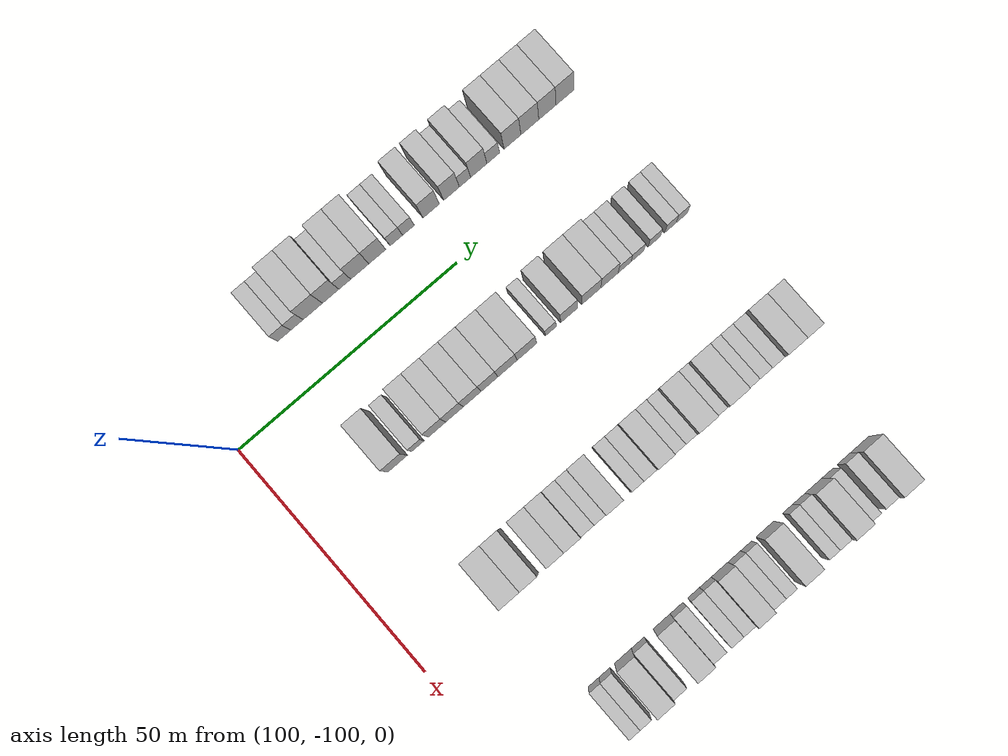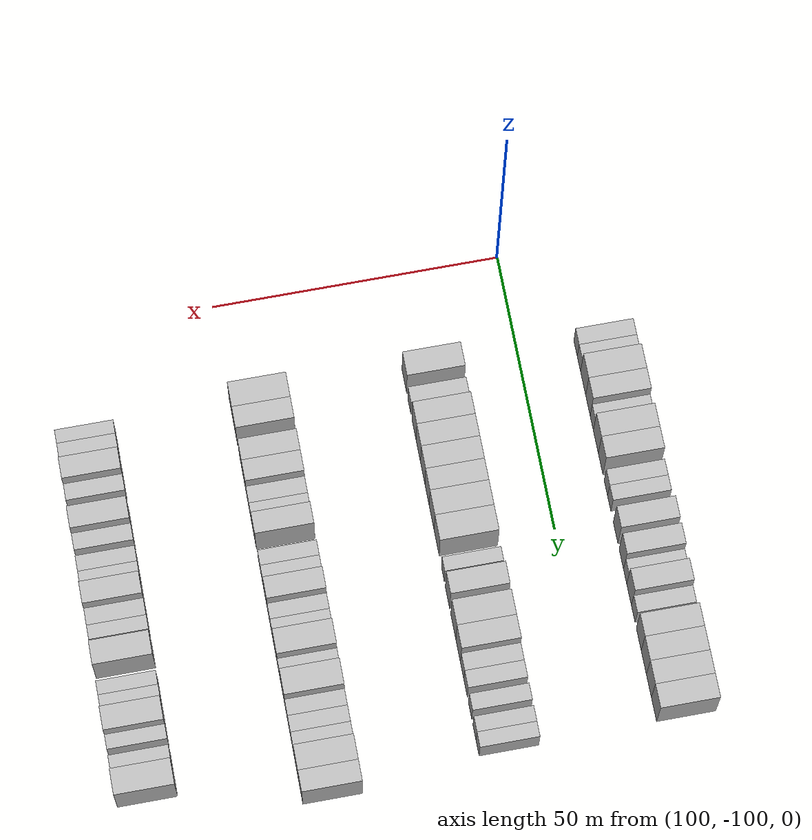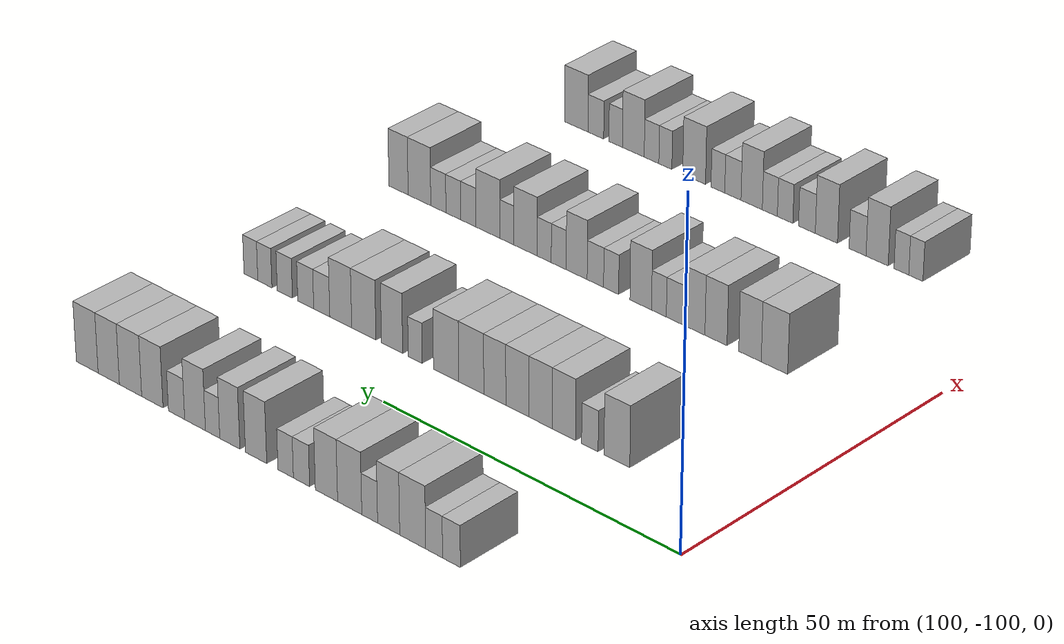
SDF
<sdf version="1.6">
 <world name="default">
  <model name="building_545">
   <static>1</static>
   <pose>85.0000 -81.1239 0 0.000000 0.000000 0.000000</pose>
   <link name="link">
    <pose>0 0 3.00 0 0 0</pose>
    <collision name="collision"><geometry><box><size>10.0000 2.9603 6.0000</size></box></geometry></collision>
    <visual name="visual">
     <cast_shadows>0</cast_shadows>
     <geometry><box><size>10.0000 2.9603 6.0000</size></box></geometry>
     <material>
      <script>
       <uri>model://HANNAS_wall/materials/scripts</uri>
       <uri>model://HANNAS_wall/materials/textures</uri>
       <name>vrc/HANNAS_wall</name>
      </script>
     </material>
    </visual>
   </link>
  </model>
  <model name="building_546">
   <static>1</static>
   <pose>85.0000 -78.2343 0 0.000000 0.000000 0.000000</pose>
   <link name="link">
    <pose>0 0 3.00 0 0 0</pose>
    <collision name="collision"><geometry><box><size>10.0000 2.8188 6.0000</size></box></geometry></collision>
    <visual name="visual">
     <cast_shadows>0</cast_shadows>
     <geometry><box><size>10.0000 2.8188 6.0000</size></box></geometry>
     <material>
      <script>
       <uri>model://HANNAS_wall/materials/scripts</uri>
       <uri>model://HANNAS_wall/materials/textures</uri>
       <name>vrc/HANNAS_wall</name>
      </script>
     </material>
    </visual>
   </link>
  </model>
  <model name="building_547">
   <static>1</static>
   <pose>85.0000 -74.6343 0 0.000000 0.000000 0.000000</pose>
   <link name="link">
    <pose>0 0 4.50 0 0 0</pose>
    <collision name="collision"><geometry><box><size>10.0000 4.3813 9.0000</size></box></geometry></collision>
    <visual name="visual">
     <cast_shadows>0</cast_shadows>
     <geometry><box><size>10.0000 4.3813 9.0000</size></box></geometry>
     <material>
      <script>
       <uri>model://HANNAS_wall/materials/scripts</uri>
       <uri>model://HANNAS_wall/materials/textures</uri>
       <name>vrc/HANNAS_wall</name>
      </script>
     </material>
    </visual>
   </link>
  </model>
  <model name="building_548">
   <static>1</static>
   <pose>85.0000 -70.5662 0 0.000000 0.000000 0.000000</pose>
   <link name="link">
    <pose>0 0 4.50 0 0 0</pose>
    <collision name="collision"><geometry><box><size>10.0000 3.7550 9.0000</size></box></geometry></collision>
    <visual name="visual">
     <cast_shadows>0</cast_shadows>
     <geometry><box><size>10.0000 3.7550 9.0000</size></box></geometry>
     <material>
      <script>
       <uri>model://HANNAS_wall/materials/scripts</uri>
       <uri>model://HANNAS_wall/materials/textures</uri>
       <name>vrc/HANNAS_wall</name>
      </script>
     </material>
    </visual>
   </link>
  </model>
  <model name="building_549">
   <static>1</static>
   <pose>85.0000 -67.3373 0 0.000000 0.000000 0.000000</pose>
   <link name="link">
    <pose>0 0 3.00 0 0 0</pose>
    <collision name="collision"><geometry><box><size>10.0000 2.7028 6.0000</size></box></geometry></collision>
    <visual name="visual">
     <cast_shadows>0</cast_shadows>
     <geometry><box><size>10.0000 2.7028 6.0000</size></box></geometry>
     <material>
      <script>
       <uri>model://HANNAS_wall/materials/scripts</uri>
       <uri>model://HANNAS_wall/materials/textures</uri>
       <name>vrc/HANNAS_wall</name>
      </script>
     </material>
    </visual>
   </link>
  </model>
  <model name="building_550">
   <static>1</static>
   <pose>85.0000 -63.8977 0 0.000000 0.000000 0.000000</pose>
   <link name="link">
    <pose>0 0 4.50 0 0 0</pose>
    <collision name="collision"><geometry><box><size>10.0000 4.1762 9.0000</size></box></geometry></collision>
    <visual name="visual">
     <cast_shadows>0</cast_shadows>
     <geometry><box><size>10.0000 4.1762 9.0000</size></box></geometry>
     <material>
      <script>
       <uri>model://HANNAS_wall/materials/scripts</uri>
       <uri>model://HANNAS_wall/materials/textures</uri>
       <name>vrc/HANNAS_wall</name>
      </script>
     </material>
    </visual>
   </link>
  </model>
  <model name="building_551">
   <static>1</static>
   <pose>85.0000 -59.8711 0 0.000000 0.000000 0.000000</pose>
   <link name="link">
    <pose>0 0 4.50 0 0 0</pose>
    <collision name="collision"><geometry><box><size>10.0000 3.8771 9.0000</size></box></geometry></collision>
    <visual name="visual">
     <cast_shadows>0</cast_shadows>
     <geometry><box><size>10.0000 3.8771 9.0000</size></box></geometry>
     <material>
      <script>
       <uri>model://HANNAS_wall/materials/scripts</uri>
       <uri>model://HANNAS_wall/materials/textures</uri>
       <name>vrc/HANNAS_wall</name>
      </script>
     </material>
    </visual>
   </link>
  </model>
  <model name="building_552">
   <static>1</static>
   <pose>85.0000 -55.5048 0 0.000000 0.000000 0.000000</pose>
   <link name="link">
    <pose>0 0 3.00 0 0 0</pose>
    <collision name="collision"><geometry><box><size>10.0000 2.8554 6.0000</size></box></geometry></collision>
    <visual name="visual">
     <cast_shadows>0</cast_shadows>
     <geometry><box><size>10.0000 2.8554 6.0000</size></box></geometry>
     <material>
      <script>
       <uri>model://HANNAS_wall/materials/scripts</uri>
       <uri>model://HANNAS_wall/materials/textures</uri>
       <name>vrc/HANNAS_wall</name>
      </script>
     </material>
    </visual>
   </link>
  </model>
  <model name="building_553">
   <static>1</static>
   <pose>85.0000 -52.7178 0 0.000000 0.000000 0.000000</pose>
   <link name="link">
    <pose>0 0 3.00 0 0 0</pose>
    <collision name="collision"><geometry><box><size>10.0000 2.7187 6.0000</size></box></geometry></collision>
    <visual name="visual">
     <cast_shadows>0</cast_shadows>
     <geometry><box><size>10.0000 2.7187 6.0000</size></box></geometry>
     <material>
      <script>
       <uri>model://HANNAS_wall/materials/scripts</uri>
       <uri>model://HANNAS_wall/materials/textures</uri>
       <name>vrc/HANNAS_wall</name>
      </script>
     </material>
    </visual>
   </link>
  </model>
  <model name="building_554">
   <static>1</static>
   <pose>85.0000 -47.4528 0 0.000000 0.000000 0.000000</pose>
   <link name="link">
    <pose>0 0 4.50 0 0 0</pose>
    <collision name="collision"><geometry><box><size>10.0000 3.8113 9.0000</size></box></geometry></collision>
    <visual name="visual">
     <cast_shadows>0</cast_shadows>
     <geometry><box><size>10.0000 3.8113 9.0000</size></box></geometry>
     <material>
      <script>
       <uri>model://HANNAS_wall/materials/scripts</uri>
       <uri>model://HANNAS_wall/materials/textures</uri>
       <name>vrc/HANNAS_wall</name>
      </script>
     </material>
    </visual>
   </link>
  </model>
  <model name="building_555">
   <static>1</static>
   <pose>85.0000 -42.7305 0 0.000000 0.000000 0.000000</pose>
   <link name="link">
    <pose>0 0 4.50 0 0 0</pose>
    <collision name="collision"><geometry><box><size>10.0000 3.6332 9.0000</size></box></geometry></collision>
    <visual name="visual">
     <cast_shadows>0</cast_shadows>
     <geometry><box><size>10.0000 3.6332 9.0000</size></box></geometry>
     <material>
      <script>
       <uri>model://HANNAS_wall/materials/scripts</uri>
       <uri>model://HANNAS_wall/materials/textures</uri>
       <name>vrc/HANNAS_wall</name>
      </script>
     </material>
    </visual>
   </link>
  </model>
  <model name="building_556">
   <static>1</static>
   <pose>85.0000 -39.6131 0 0.000000 0.000000 0.000000</pose>
   <link name="link">
    <pose>0 0 3.00 0 0 0</pose>
    <collision name="collision"><geometry><box><size>10.0000 2.6017 6.0000</size></box></geometry></collision>
    <visual name="visual">
     <cast_shadows>0</cast_shadows>
     <geometry><box><size>10.0000 2.6017 6.0000</size></box></geometry>
     <material>
      <script>
       <uri>model://HANNAS_wall/materials/scripts</uri>
       <uri>model://HANNAS_wall/materials/textures</uri>
       <name>vrc/HANNAS_wall</name>
      </script>
     </material>
    </visual>
   </link>
  </model>
  <model name="building_557">
   <static>1</static>
   <pose>85.0000 -36.4079 0 0.000000 0.000000 0.000000</pose>
   <link name="link">
    <pose>0 0 4.50 0 0 0</pose>
    <collision name="collision"><geometry><box><size>10.0000 3.8086 9.0000</size></box></geometry></collision>
    <visual name="visual">
     <cast_shadows>0</cast_shadows>
     <geometry><box><size>10.0000 3.8086 9.0000</size></box></geometry>
     <material>
      <script>
       <uri>model://HANNAS_wall/materials/scripts</uri>
       <uri>model://HANNAS_wall/materials/textures</uri>
       <name>vrc/HANNAS_wall</name>
      </script>
     </material>
    </visual>
   </link>
  </model>
  <model name="building_558">
   <static>1</static>
   <pose>85.0000 -33.0100 0 0.000000 0.000000 0.000000</pose>
   <link name="link">
    <pose>0 0 3.00 0 0 0</pose>
    <collision name="collision"><geometry><box><size>10.0000 2.9872 6.0000</size></box></geometry></collision>
    <visual name="visual">
     <cast_shadows>0</cast_shadows>
     <geometry><box><size>10.0000 2.9872 6.0000</size></box></geometry>
     <material>
      <script>
       <uri>model://HANNAS_wall/materials/scripts</uri>
       <uri>model://HANNAS_wall/materials/textures</uri>
       <name>vrc/HANNAS_wall</name>
      </script>
     </material>
    </visual>
   </link>
  </model>
  <model name="building_559">
   <static>1</static>
   <pose>85.0000 -28.5304 0 0.000000 0.000000 0.000000</pose>
   <link name="link">
    <pose>0 0 4.50 0 0 0</pose>
    <collision name="collision"><geometry><box><size>10.0000 3.9720 9.0000</size></box></geometry></collision>
    <visual name="visual">
     <cast_shadows>0</cast_shadows>
     <geometry><box><size>10.0000 3.9720 9.0000</size></box></geometry>
     <material>
      <script>
       <uri>model://HANNAS_wall/materials/scripts</uri>
       <uri>model://HANNAS_wall/materials/textures</uri>
       <name>vrc/HANNAS_wall</name>
      </script>
     </material>
    </visual>
   </link>
  </model>
  <model name="building_560">
   <static>1</static>
   <pose>85.0000 -24.4537 0 0.000000 0.000000 0.000000</pose>
   <link name="link">
    <pose>0 0 4.50 0 0 0</pose>
    <collision name="collision"><geometry><box><size>10.0000 4.1814 9.0000</size></box></geometry></collision>
    <visual name="visual">
     <cast_shadows>0</cast_shadows>
     <geometry><box><size>10.0000 4.1814 9.0000</size></box></geometry>
     <material>
      <script>
       <uri>model://HANNAS_wall/materials/scripts</uri>
       <uri>model://HANNAS_wall/materials/textures</uri>
       <name>vrc/HANNAS_wall</name>
      </script>
     </material>
    </visual>
   </link>
  </model>
  <model name="building_561">
   <static>1</static>
   <pose>85.0000 -20.3516 0 0.000000 0.000000 0.000000</pose>
   <link name="link">
    <pose>0 0 4.50 0 0 0</pose>
    <collision name="collision"><geometry><box><size>10.0000 4.0229 9.0000</size></box></geometry></collision>
    <visual name="visual">
     <cast_shadows>0</cast_shadows>
     <geometry><box><size>10.0000 4.0229 9.0000</size></box></geometry>
     <material>
      <script>
       <uri>model://HANNAS_wall/materials/scripts</uri>
       <uri>model://HANNAS_wall/materials/textures</uri>
       <name>vrc/HANNAS_wall</name>
      </script>
     </material>
    </visual>
   </link>
  </model>
  <model name="building_562">
   <static>1</static>
   <pose>85.0000 -16.2618 0 0.000000 0.000000 0.000000</pose>
   <link name="link">
    <pose>0 0 4.50 0 0 0</pose>
    <collision name="collision"><geometry><box><size>10.0000 4.1566 9.0000</size></box></geometry></collision>
    <visual name="visual">
     <cast_shadows>0</cast_shadows>
     <geometry><box><size>10.0000 4.1566 9.0000</size></box></geometry>
     <material>
      <script>
       <uri>model://HANNAS_wall/materials/scripts</uri>
       <uri>model://HANNAS_wall/materials/textures</uri>
       <name>vrc/HANNAS_wall</name>
      </script>
     </material>
    </visual>
   </link>
  </model>
  <model name="building_778">
   <static>1</static>
   <pose>115.0000 -80.5696 0 0.000000 0.000000 0.000000</pose>
   <link name="link">
    <pose>0 0 4.50 0 0 0</pose>
    <collision name="collision"><geometry><box><size>10.0000 4.2958 9.0000</size></box></geometry></collision>
    <visual name="visual">
     <cast_shadows>0</cast_shadows>
     <geometry><box><size>10.0000 4.2958 9.0000</size></box></geometry>
     <material>
      <script>
       <uri>model://HANNAS_wall/materials/scripts</uri>
       <uri>model://HANNAS_wall/materials/textures</uri>
       <name>vrc/HANNAS_wall</name>
      </script>
     </material>
    </visual>
   </link>
  </model>
  <model name="building_779">
   <static>1</static>
   <pose>115.0000 -76.0276 0 0.000000 0.000000 0.000000</pose>
   <link name="link">
    <pose>0 0 3.00 0 0 0</pose>
    <collision name="collision"><geometry><box><size>10.0000 2.7881 6.0000</size></box></geometry></collision>
    <visual name="visual">
     <cast_shadows>0</cast_shadows>
     <geometry><box><size>10.0000 2.7881 6.0000</size></box></geometry>
     <material>
      <script>
       <uri>model://HANNAS_wall/materials/scripts</uri>
       <uri>model://HANNAS_wall/materials/textures</uri>
       <name>vrc/HANNAS_wall</name>
      </script>
     </material>
    </visual>
   </link>
  </model>
  <model name="building_780">
   <static>1</static>
   <pose>115.0000 -71.6526 0 0.000000 0.000000 0.000000</pose>
   <link name="link">
    <pose>0 0 4.50 0 0 0</pose>
    <collision name="collision"><geometry><box><size>10.0000 3.9619 9.0000</size></box></geometry></collision>
    <visual name="visual">
     <cast_shadows>0</cast_shadows>
     <geometry><box><size>10.0000 3.9619 9.0000</size></box></geometry>
     <material>
      <script>
       <uri>model://HANNAS_wall/materials/scripts</uri>
       <uri>model://HANNAS_wall/materials/textures</uri>
       <name>vrc/HANNAS_wall</name>
      </script>
     </material>
    </visual>
   </link>
  </model>
  <model name="building_781">
   <static>1</static>
   <pose>115.0000 -67.6798 0 0.000000 0.000000 0.000000</pose>
   <link name="link">
    <pose>0 0 4.50 0 0 0</pose>
    <collision name="collision"><geometry><box><size>10.0000 3.9837 9.0000</size></box></geometry></collision>
    <visual name="visual">
     <cast_shadows>0</cast_shadows>
     <geometry><box><size>10.0000 3.9837 9.0000</size></box></geometry>
     <material>
      <script>
       <uri>model://HANNAS_wall/materials/scripts</uri>
       <uri>model://HANNAS_wall/materials/textures</uri>
       <name>vrc/HANNAS_wall</name>
      </script>
     </material>
    </visual>
   </link>
  </model>
  <model name="building_782">
   <static>1</static>
   <pose>115.0000 -63.6665 0 0.000000 0.000000 0.000000</pose>
   <link name="link">
    <pose>0 0 4.50 0 0 0</pose>
    <collision name="collision"><geometry><box><size>10.0000 4.0430 9.0000</size></box></geometry></collision>
    <visual name="visual">
     <cast_shadows>0</cast_shadows>
     <geometry><box><size>10.0000 4.0430 9.0000</size></box></geometry>
     <material>
      <script>
       <uri>model://HANNAS_wall/materials/scripts</uri>
       <uri>model://HANNAS_wall/materials/textures</uri>
       <name>vrc/HANNAS_wall</name>
      </script>
     </material>
    </visual>
   </link>
  </model>
  <model name="building_783">
   <static>1</static>
   <pose>115.0000 -59.7232 0 0.000000 0.000000 0.000000</pose>
   <link name="link">
    <pose>0 0 4.50 0 0 0</pose>
    <collision name="collision"><geometry><box><size>10.0000 3.8436 9.0000</size></box></geometry></collision>
    <visual name="visual">
     <cast_shadows>0</cast_shadows>
     <geometry><box><size>10.0000 3.8436 9.0000</size></box></geometry>
     <material>
      <script>
       <uri>model://HANNAS_wall/materials/scripts</uri>
       <uri>model://HANNAS_wall/materials/textures</uri>
       <name>vrc/HANNAS_wall</name>
      </script>
     </material>
    </visual>
   </link>
  </model>
  <model name="building_784">
   <static>1</static>
   <pose>115.0000 -55.5906 0 0.000000 0.000000 0.000000</pose>
   <link name="link">
    <pose>0 0 4.50 0 0 0</pose>
    <collision name="collision"><geometry><box><size>10.0000 4.4215 9.0000</size></box></geometry></collision>
    <visual name="visual">
     <cast_shadows>0</cast_shadows>
     <geometry><box><size>10.0000 4.4215 9.0000</size></box></geometry>
     <material>
      <script>
       <uri>model://HANNAS_wall/materials/scripts</uri>
       <uri>model://HANNAS_wall/materials/textures</uri>
       <name>vrc/HANNAS_wall</name>
      </script>
     </material>
    </visual>
   </link>
  </model>
  <model name="building_785">
   <static>1</static>
   <pose>115.0000 -51.1321 0 0.000000 0.000000 0.000000</pose>
   <link name="link">
    <pose>0 0 4.50 0 0 0</pose>
    <collision name="collision"><geometry><box><size>10.0000 4.4955 9.0000</size></box></geometry></collision>
    <visual name="visual">
     <cast_shadows>0</cast_shadows>
     <geometry><box><size>10.0000 4.4955 9.0000</size></box></geometry>
     <material>
      <script>
       <uri>model://HANNAS_wall/materials/scripts</uri>
       <uri>model://HANNAS_wall/materials/textures</uri>
       <name>vrc/HANNAS_wall</name>
      </script>
     </material>
    </visual>
   </link>
  </model>
  <model name="building_786">
   <static>1</static>
   <pose>115.0000 -45.6271 0 0.000000 0.000000 0.000000</pose>
   <link name="link">
    <pose>0 0 3.00 0 0 0</pose>
    <collision name="collision"><geometry><box><size>10.0000 2.5143 6.0000</size></box></geometry></collision>
    <visual name="visual">
     <cast_shadows>0</cast_shadows>
     <geometry><box><size>10.0000 2.5143 6.0000</size></box></geometry>
     <material>
      <script>
       <uri>model://HANNAS_wall/materials/scripts</uri>
       <uri>model://HANNAS_wall/materials/textures</uri>
       <name>vrc/HANNAS_wall</name>
      </script>
     </material>
    </visual>
   </link>
  </model>
  <model name="building_787">
   <static>1</static>
   <pose>115.0000 -41.4441 0 0.000000 0.000000 0.000000</pose>
   <link name="link">
    <pose>0 0 4.50 0 0 0</pose>
    <collision name="collision"><geometry><box><size>10.0000 3.8518 9.0000</size></box></geometry></collision>
    <visual name="visual">
     <cast_shadows>0</cast_shadows>
     <geometry><box><size>10.0000 3.8518 9.0000</size></box></geometry>
     <material>
      <script>
       <uri>model://HANNAS_wall/materials/scripts</uri>
       <uri>model://HANNAS_wall/materials/textures</uri>
       <name>vrc/HANNAS_wall</name>
      </script>
     </material>
    </visual>
   </link>
  </model>
  <model name="building_788">
   <static>1</static>
   <pose>115.0000 -36.2957 0 0.000000 0.000000 0.000000</pose>
   <link name="link">
    <pose>0 0 4.50 0 0 0</pose>
    <collision name="collision"><geometry><box><size>10.0000 4.4450 9.0000</size></box></geometry></collision>
    <visual name="visual">
     <cast_shadows>0</cast_shadows>
     <geometry><box><size>10.0000 4.4450 9.0000</size></box></geometry>
     <material>
      <script>
       <uri>model://HANNAS_wall/materials/scripts</uri>
       <uri>model://HANNAS_wall/materials/textures</uri>
       <name>vrc/HANNAS_wall</name>
      </script>
     </material>
    </visual>
   </link>
  </model>
  <model name="building_789">
   <static>1</static>
   <pose>115.0000 -32.0443 0 0.000000 0.000000 0.000000</pose>
   <link name="link">
    <pose>0 0 4.50 0 0 0</pose>
    <collision name="collision"><geometry><box><size>10.0000 4.0579 9.0000</size></box></geometry></collision>
    <visual name="visual">
     <cast_shadows>0</cast_shadows>
     <geometry><box><size>10.0000 4.0579 9.0000</size></box></geometry>
     <material>
      <script>
       <uri>model://HANNAS_wall/materials/scripts</uri>
       <uri>model://HANNAS_wall/materials/textures</uri>
       <name>vrc/HANNAS_wall</name>
      </script>
     </material>
    </visual>
   </link>
  </model>
  <model name="building_790">
   <static>1</static>
   <pose>115.0000 -28.5166 0 0.000000 0.000000 0.000000</pose>
   <link name="link">
    <pose>0 0 3.00 0 0 0</pose>
    <collision name="collision"><geometry><box><size>10.0000 2.9974 6.0000</size></box></geometry></collision>
    <visual name="visual">
     <cast_shadows>0</cast_shadows>
     <geometry><box><size>10.0000 2.9974 6.0000</size></box></geometry>
     <material>
      <script>
       <uri>model://HANNAS_wall/materials/scripts</uri>
       <uri>model://HANNAS_wall/materials/textures</uri>
       <name>vrc/HANNAS_wall</name>
      </script>
     </material>
    </visual>
   </link>
  </model>
  <model name="building_791">
   <static>1</static>
   <pose>115.0000 -25.5226 0 0.000000 0.000000 0.000000</pose>
   <link name="link">
    <pose>0 0 3.00 0 0 0</pose>
    <collision name="collision"><geometry><box><size>10.0000 2.9906 6.0000</size></box></geometry></collision>
    <visual name="visual">
     <cast_shadows>0</cast_shadows>
     <geometry><box><size>10.0000 2.9906 6.0000</size></box></geometry>
     <material>
      <script>
       <uri>model://HANNAS_wall/materials/scripts</uri>
       <uri>model://HANNAS_wall/materials/textures</uri>
       <name>vrc/HANNAS_wall</name>
      </script>
     </material>
    </visual>
   </link>
  </model>
  <model name="building_792">
   <static>1</static>
   <pose>115.0000 -21.5911 0 0.000000 0.000000 0.000000</pose>
   <link name="link">
    <pose>0 0 3.00 0 0 0</pose>
    <collision name="collision"><geometry><box><size>10.0000 2.8725 6.0000</size></box></geometry></collision>
    <visual name="visual">
     <cast_shadows>0</cast_shadows>
     <geometry><box><size>10.0000 2.8725 6.0000</size></box></geometry>
     <material>
      <script>
       <uri>model://HANNAS_wall/materials/scripts</uri>
       <uri>model://HANNAS_wall/materials/textures</uri>
       <name>vrc/HANNAS_wall</name>
      </script>
     </material>
    </visual>
   </link>
  </model>
  <model name="building_793">
   <static>1</static>
   <pose>115.0000 -17.8082 0 0.000000 0.000000 0.000000</pose>
   <link name="link">
    <pose>0 0 3.00 0 0 0</pose>
    <collision name="collision"><geometry><box><size>10.0000 2.6932 6.0000</size></box></geometry></collision>
    <visual name="visual">
     <cast_shadows>0</cast_shadows>
     <geometry><box><size>10.0000 2.6932 6.0000</size></box></geometry>
     <material>
      <script>
       <uri>model://HANNAS_wall/materials/scripts</uri>
       <uri>model://HANNAS_wall/materials/textures</uri>
       <name>vrc/HANNAS_wall</name>
      </script>
     </material>
    </visual>
   </link>
  </model>
  <model name="building_794">
   <static>1</static>
   <pose>115.0000 -15.1454 0 0.000000 0.000000 0.000000</pose>
   <link name="link">
    <pose>0 0 3.00 0 0 0</pose>
    <collision name="collision"><geometry><box><size>10.0000 2.6323 6.0000</size></box></geometry></collision>
    <visual name="visual">
     <cast_shadows>0</cast_shadows>
     <geometry><box><size>10.0000 2.6323 6.0000</size></box></geometry>
     <material>
      <script>
       <uri>model://HANNAS_wall/materials/scripts</uri>
       <uri>model://HANNAS_wall/materials/textures</uri>
       <name>vrc/HANNAS_wall</name>
      </script>
     </material>
    </visual>
   </link>
  </model>
  <model name="building_1009">
   <static>1</static>
   <pose>145.0000 -80.5540 0 0.000000 0.000000 0.000000</pose>
   <link name="link">
    <pose>0 0 4.50 0 0 0</pose>
    <collision name="collision"><geometry><box><size>10.0000 4.4413 9.0000</size></box></geometry></collision>
    <visual name="visual">
     <cast_shadows>0</cast_shadows>
     <geometry><box><size>10.0000 4.4413 9.0000</size></box></geometry>
     <material>
      <script>
       <uri>model://HANNAS_wall/materials/scripts</uri>
       <uri>model://HANNAS_wall/materials/textures</uri>
       <name>vrc/HANNAS_wall</name>
      </script>
     </material>
    </visual>
   </link>
  </model>
  <model name="building_1010">
   <static>1</static>
   <pose>145.0000 -76.4279 0 0.000000 0.000000 0.000000</pose>
   <link name="link">
    <pose>0 0 4.50 0 0 0</pose>
    <collision name="collision"><geometry><box><size>10.0000 3.8109 9.0000</size></box></geometry></collision>
    <visual name="visual">
     <cast_shadows>0</cast_shadows>
     <geometry><box><size>10.0000 3.8109 9.0000</size></box></geometry>
     <material>
      <script>
       <uri>model://HANNAS_wall/materials/scripts</uri>
       <uri>model://HANNAS_wall/materials/textures</uri>
       <name>vrc/HANNAS_wall</name>
      </script>
     </material>
    </visual>
   </link>
  </model>
  <model name="building_1011">
   <static>1</static>
   <pose>145.0000 -70.6289 0 0.000000 0.000000 0.000000</pose>
   <link name="link">
    <pose>0 0 4.50 0 0 0</pose>
    <collision name="collision"><geometry><box><size>10.0000 3.7870 9.0000</size></box></geometry></collision>
    <visual name="visual">
     <cast_shadows>0</cast_shadows>
     <geometry><box><size>10.0000 3.7870 9.0000</size></box></geometry>
     <material>
      <script>
       <uri>model://HANNAS_wall/materials/scripts</uri>
       <uri>model://HANNAS_wall/materials/textures</uri>
       <name>vrc/HANNAS_wall</name>
      </script>
     </material>
    </visual>
   </link>
  </model>
  <model name="building_1012">
   <static>1</static>
   <pose>145.0000 -66.8709 0 0.000000 0.000000 0.000000</pose>
   <link name="link">
    <pose>0 0 4.50 0 0 0</pose>
    <collision name="collision"><geometry><box><size>10.0000 3.7292 9.0000</size></box></geometry></collision>
    <visual name="visual">
     <cast_shadows>0</cast_shadows>
     <geometry><box><size>10.0000 3.7292 9.0000</size></box></geometry>
     <material>
      <script>
       <uri>model://HANNAS_wall/materials/scripts</uri>
       <uri>model://HANNAS_wall/materials/textures</uri>
       <name>vrc/HANNAS_wall</name>
      </script>
     </material>
    </visual>
   </link>
  </model>
  <model name="building_1013">
   <static>1</static>
   <pose>145.0000 -63.5257 0 0.000000 0.000000 0.000000</pose>
   <link name="link">
    <pose>0 0 3.00 0 0 0</pose>
    <collision name="collision"><geometry><box><size>10.0000 2.9611 6.0000</size></box></geometry></collision>
    <visual name="visual">
     <cast_shadows>0</cast_shadows>
     <geometry><box><size>10.0000 2.9611 6.0000</size></box></geometry>
     <material>
      <script>
       <uri>model://HANNAS_wall/materials/scripts</uri>
       <uri>model://HANNAS_wall/materials/textures</uri>
       <name>vrc/HANNAS_wall</name>
      </script>
     </material>
    </visual>
   </link>
  </model>
  <model name="building_1014">
   <static>1</static>
   <pose>145.0000 -60.7494 0 0.000000 0.000000 0.000000</pose>
   <link name="link">
    <pose>0 0 3.00 0 0 0</pose>
    <collision name="collision"><geometry><box><size>10.0000 2.5915 6.0000</size></box></geometry></collision>
    <visual name="visual">
     <cast_shadows>0</cast_shadows>
     <geometry><box><size>10.0000 2.5915 6.0000</size></box></geometry>
     <material>
      <script>
       <uri>model://HANNAS_wall/materials/scripts</uri>
       <uri>model://HANNAS_wall/materials/textures</uri>
       <name>vrc/HANNAS_wall</name>
      </script>
     </material>
    </visual>
   </link>
  </model>
  <model name="building_1015">
   <static>1</static>
   <pose>145.0000 -57.5539 0 0.000000 0.000000 0.000000</pose>
   <link name="link">
    <pose>0 0 4.50 0 0 0</pose>
    <collision name="collision"><geometry><box><size>10.0000 3.7995 9.0000</size></box></geometry></collision>
    <visual name="visual">
     <cast_shadows>0</cast_shadows>
     <geometry><box><size>10.0000 3.7995 9.0000</size></box></geometry>
     <material>
      <script>
       <uri>model://HANNAS_wall/materials/scripts</uri>
       <uri>model://HANNAS_wall/materials/textures</uri>
       <name>vrc/HANNAS_wall</name>
      </script>
     </material>
    </visual>
   </link>
  </model>
  <model name="building_1016">
   <static>1</static>
   <pose>145.0000 -52.3153 0 0.000000 0.000000 0.000000</pose>
   <link name="link">
    <pose>0 0 3.00 0 0 0</pose>
    <collision name="collision"><geometry><box><size>10.0000 2.6776 6.0000</size></box></geometry></collision>
    <visual name="visual">
     <cast_shadows>0</cast_shadows>
     <geometry><box><size>10.0000 2.6776 6.0000</size></box></geometry>
     <material>
      <script>
       <uri>model://HANNAS_wall/materials/scripts</uri>
       <uri>model://HANNAS_wall/materials/textures</uri>
       <name>vrc/HANNAS_wall</name>
      </script>
     </material>
    </visual>
   </link>
  </model>
  <model name="building_1017">
   <static>1</static>
   <pose>145.0000 -49.5030 0 0.000000 0.000000 0.000000</pose>
   <link name="link">
    <pose>0 0 3.00 0 0 0</pose>
    <collision name="collision"><geometry><box><size>10.0000 2.9470 6.0000</size></box></geometry></collision>
    <visual name="visual">
     <cast_shadows>0</cast_shadows>
     <geometry><box><size>10.0000 2.9470 6.0000</size></box></geometry>
     <material>
      <script>
       <uri>model://HANNAS_wall/materials/scripts</uri>
       <uri>model://HANNAS_wall/materials/textures</uri>
       <name>vrc/HANNAS_wall</name>
      </script>
     </material>
    </visual>
   </link>
  </model>
  <model name="building_1018">
   <static>1</static>
   <pose>145.0000 -46.1502 0 0.000000 0.000000 0.000000</pose>
   <link name="link">
    <pose>0 0 4.50 0 0 0</pose>
    <collision name="collision"><geometry><box><size>10.0000 3.7587 9.0000</size></box></geometry></collision>
    <visual name="visual">
     <cast_shadows>0</cast_shadows>
     <geometry><box><size>10.0000 3.7587 9.0000</size></box></geometry>
     <material>
      <script>
       <uri>model://HANNAS_wall/materials/scripts</uri>
       <uri>model://HANNAS_wall/materials/textures</uri>
       <name>vrc/HANNAS_wall</name>
      </script>
     </material>
    </visual>
   </link>
  </model>
  <model name="building_1019">
   <static>1</static>
   <pose>145.0000 -42.9078 0 0.000000 0.000000 0.000000</pose>
   <link name="link">
    <pose>0 0 3.00 0 0 0</pose>
    <collision name="collision"><geometry><box><size>10.0000 2.7262 6.0000</size></box></geometry></collision>
    <visual name="visual">
     <cast_shadows>0</cast_shadows>
     <geometry><box><size>10.0000 2.7262 6.0000</size></box></geometry>
     <material>
      <script>
       <uri>model://HANNAS_wall/materials/scripts</uri>
       <uri>model://HANNAS_wall/materials/textures</uri>
       <name>vrc/HANNAS_wall</name>
      </script>
     </material>
    </visual>
   </link>
  </model>
  <model name="building_1020">
   <static>1</static>
   <pose>145.0000 -40.2682 0 0.000000 0.000000 0.000000</pose>
   <link name="link">
    <pose>0 0 3.00 0 0 0</pose>
    <collision name="collision"><geometry><box><size>10.0000 2.5529 6.0000</size></box></geometry></collision>
    <visual name="visual">
     <cast_shadows>0</cast_shadows>
     <geometry><box><size>10.0000 2.5529 6.0000</size></box></geometry>
     <material>
      <script>
       <uri>model://HANNAS_wall/materials/scripts</uri>
       <uri>model://HANNAS_wall/materials/textures</uri>
       <name>vrc/HANNAS_wall</name>
      </script>
     </material>
    </visual>
   </link>
  </model>
  <model name="building_1021">
   <static>1</static>
   <pose>145.0000 -36.8274 0 0.000000 0.000000 0.000000</pose>
   <link name="link">
    <pose>0 0 4.50 0 0 0</pose>
    <collision name="collision"><geometry><box><size>10.0000 4.3288 9.0000</size></box></geometry></collision>
    <visual name="visual">
     <cast_shadows>0</cast_shadows>
     <geometry><box><size>10.0000 4.3288 9.0000</size></box></geometry>
     <material>
      <script>
       <uri>model://HANNAS_wall/materials/scripts</uri>
       <uri>model://HANNAS_wall/materials/textures</uri>
       <name>vrc/HANNAS_wall</name>
      </script>
     </material>
    </visual>
   </link>
  </model>
  <model name="building_1022">
   <static>1</static>
   <pose>145.0000 -33.3969 0 0.000000 0.000000 0.000000</pose>
   <link name="link">
    <pose>0 0 3.00 0 0 0</pose>
    <collision name="collision"><geometry><box><size>10.0000 2.5321 6.0000</size></box></geometry></collision>
    <visual name="visual">
     <cast_shadows>0</cast_shadows>
     <geometry><box><size>10.0000 2.5321 6.0000</size></box></geometry>
     <material>
      <script>
       <uri>model://HANNAS_wall/materials/scripts</uri>
       <uri>model://HANNAS_wall/materials/textures</uri>
       <name>vrc/HANNAS_wall</name>
      </script>
     </material>
    </visual>
   </link>
  </model>
  <model name="building_1023">
   <static>1</static>
   <pose>145.0000 -29.8843 0 0.000000 0.000000 0.000000</pose>
   <link name="link">
    <pose>0 0 4.50 0 0 0</pose>
    <collision name="collision"><geometry><box><size>10.0000 4.4931 9.0000</size></box></geometry></collision>
    <visual name="visual">
     <cast_shadows>0</cast_shadows>
     <geometry><box><size>10.0000 4.4931 9.0000</size></box></geometry>
     <material>
      <script>
       <uri>model://HANNAS_wall/materials/scripts</uri>
       <uri>model://HANNAS_wall/materials/textures</uri>
       <name>vrc/HANNAS_wall</name>
      </script>
     </material>
    </visual>
   </link>
  </model>
  <model name="building_1024">
   <static>1</static>
   <pose>145.0000 -26.2345 0 0.000000 0.000000 0.000000</pose>
   <link name="link">
    <pose>0 0 3.00 0 0 0</pose>
    <collision name="collision"><geometry><box><size>10.0000 2.8066 6.0000</size></box></geometry></collision>
    <visual name="visual">
     <cast_shadows>0</cast_shadows>
     <geometry><box><size>10.0000 2.8066 6.0000</size></box></geometry>
     <material>
      <script>
       <uri>model://HANNAS_wall/materials/scripts</uri>
       <uri>model://HANNAS_wall/materials/textures</uri>
       <name>vrc/HANNAS_wall</name>
      </script>
     </material>
    </visual>
   </link>
  </model>
  <model name="building_1025">
   <static>1</static>
   <pose>145.0000 -23.4234 0 0.000000 0.000000 0.000000</pose>
   <link name="link">
    <pose>0 0 3.00 0 0 0</pose>
    <collision name="collision"><geometry><box><size>10.0000 2.8158 6.0000</size></box></geometry></collision>
    <visual name="visual">
     <cast_shadows>0</cast_shadows>
     <geometry><box><size>10.0000 2.8158 6.0000</size></box></geometry>
     <material>
      <script>
       <uri>model://HANNAS_wall/materials/scripts</uri>
       <uri>model://HANNAS_wall/materials/textures</uri>
       <name>vrc/HANNAS_wall</name>
      </script>
     </material>
    </visual>
   </link>
  </model>
  <model name="building_1026">
   <static>1</static>
   <pose>145.0000 -20.5791 0 0.000000 0.000000 0.000000</pose>
   <link name="link">
    <pose>0 0 3.00 0 0 0</pose>
    <collision name="collision"><geometry><box><size>10.0000 2.8728 6.0000</size></box></geometry></collision>
    <visual name="visual">
     <cast_shadows>0</cast_shadows>
     <geometry><box><size>10.0000 2.8728 6.0000</size></box></geometry>
     <material>
      <script>
       <uri>model://HANNAS_wall/materials/scripts</uri>
       <uri>model://HANNAS_wall/materials/textures</uri>
       <name>vrc/HANNAS_wall</name>
      </script>
     </material>
    </visual>
   </link>
  </model>
  <model name="building_1027">
   <static>1</static>
   <pose>145.0000 -16.9817 0 0.000000 0.000000 0.000000</pose>
   <link name="link">
    <pose>0 0 4.50 0 0 0</pose>
    <collision name="collision"><geometry><box><size>10.0000 4.3219 9.0000</size></box></geometry></collision>
    <visual name="visual">
     <cast_shadows>0</cast_shadows>
     <geometry><box><size>10.0000 4.3219 9.0000</size></box></geometry>
     <material>
      <script>
       <uri>model://HANNAS_wall/materials/scripts</uri>
       <uri>model://HANNAS_wall/materials/textures</uri>
       <name>vrc/HANNAS_wall</name>
      </script>
     </material>
    </visual>
   </link>
  </model>
  <model name="building_1028">
   <static>1</static>
   <pose>145.0000 -12.9772 0 0.000000 0.000000 0.000000</pose>
   <link name="link">
    <pose>0 0 4.50 0 0 0</pose>
    <collision name="collision"><geometry><box><size>10.0000 3.6871 9.0000</size></box></geometry></collision>
    <visual name="visual">
     <cast_shadows>0</cast_shadows>
     <geometry><box><size>10.0000 3.6871 9.0000</size></box></geometry>
     <material>
      <script>
       <uri>model://HANNAS_wall/materials/scripts</uri>
       <uri>model://HANNAS_wall/materials/textures</uri>
       <name>vrc/HANNAS_wall</name>
      </script>
     </material>
    </visual>
   </link>
  </model>
  <model name="building_1237">
   <static>1</static>
   <pose>175.0000 -79.5292 0 0.000000 0.000000 0.000000</pose>
   <link name="link">
    <pose>0 0 3.00 0 0 0</pose>
    <collision name="collision"><geometry><box><size>10.0000 2.4100 6.0000</size></box></geometry></collision>
    <visual name="visual">
     <cast_shadows>0</cast_shadows>
     <geometry><box><size>10.0000 2.4100 6.0000</size></box></geometry>
     <material>
      <script>
       <uri>model://HANNAS_wall/materials/scripts</uri>
       <uri>model://HANNAS_wall/materials/textures</uri>
       <name>vrc/HANNAS_wall</name>
      </script>
     </material>
    </visual>
   </link>
  </model>
  <model name="building_1238">
   <static>1</static>
   <pose>175.0000 -77.0720 0 0.000000 0.000000 0.000000</pose>
   <link name="link">
    <pose>0 0 3.00 0 0 0</pose>
    <collision name="collision"><geometry><box><size>10.0000 2.5044 6.0000</size></box></geometry></collision>
    <visual name="visual">
     <cast_shadows>0</cast_shadows>
     <geometry><box><size>10.0000 2.5044 6.0000</size></box></geometry>
     <material>
      <script>
       <uri>model://HANNAS_wall/materials/scripts</uri>
       <uri>model://HANNAS_wall/materials/textures</uri>
       <name>vrc/HANNAS_wall</name>
      </script>
     </material>
    </visual>
   </link>
  </model>
  <model name="building_1239">
   <static>1</static>
   <pose>175.0000 -72.9146 0 0.000000 0.000000 0.000000</pose>
   <link name="link">
    <pose>0 0 4.50 0 0 0</pose>
    <collision name="collision"><geometry><box><size>10.0000 3.8104 9.0000</size></box></geometry></collision>
    <visual name="visual">
     <cast_shadows>0</cast_shadows>
     <geometry><box><size>10.0000 3.8104 9.0000</size></box></geometry>
     <material>
      <script>
       <uri>model://HANNAS_wall/materials/scripts</uri>
       <uri>model://HANNAS_wall/materials/textures</uri>
       <name>vrc/HANNAS_wall</name>
      </script>
     </material>
    </visual>
   </link>
  </model>
  <model name="building_1240">
   <static>1</static>
   <pose>175.0000 -69.5400 0 0.000000 0.000000 0.000000</pose>
   <link name="link">
    <pose>0 0 3.00 0 0 0</pose>
    <collision name="collision"><geometry><box><size>10.0000 2.9388 6.0000</size></box></geometry></collision>
    <visual name="visual">
     <cast_shadows>0</cast_shadows>
     <geometry><box><size>10.0000 2.9388 6.0000</size></box></geometry>
     <material>
      <script>
       <uri>model://HANNAS_wall/materials/scripts</uri>
       <uri>model://HANNAS_wall/materials/textures</uri>
       <name>vrc/HANNAS_wall</name>
      </script>
     </material>
    </visual>
   </link>
  </model>
  <model name="building_1241">
   <static>1</static>
   <pose>175.0000 -64.1270 0 0.000000 0.000000 0.000000</pose>
   <link name="link">
    <pose>0 0 4.50 0 0 0</pose>
    <collision name="collision"><geometry><box><size>10.0000 3.8872 9.0000</size></box></geometry></collision>
    <visual name="visual">
     <cast_shadows>0</cast_shadows>
     <geometry><box><size>10.0000 3.8872 9.0000</size></box></geometry>
     <material>
      <script>
       <uri>model://HANNAS_wall/materials/scripts</uri>
       <uri>model://HANNAS_wall/materials/textures</uri>
       <name>vrc/HANNAS_wall</name>
      </script>
     </material>
    </visual>
   </link>
  </model>
  <model name="building_1242">
   <static>1</static>
   <pose>175.0000 -60.7067 0 0.000000 0.000000 0.000000</pose>
   <link name="link">
    <pose>0 0 3.00 0 0 0</pose>
    <collision name="collision"><geometry><box><size>10.0000 2.9534 6.0000</size></box></geometry></collision>
    <visual name="visual">
     <cast_shadows>0</cast_shadows>
     <geometry><box><size>10.0000 2.9534 6.0000</size></box></geometry>
     <material>
      <script>
       <uri>model://HANNAS_wall/materials/scripts</uri>
       <uri>model://HANNAS_wall/materials/textures</uri>
       <name>vrc/HANNAS_wall</name>
      </script>
     </material>
    </visual>
   </link>
  </model>
  <model name="building_1243">
   <static>1</static>
   <pose>175.0000 -56.8549 0 0.000000 0.000000 0.000000</pose>
   <link name="link">
    <pose>0 0 3.00 0 0 0</pose>
    <collision name="collision"><geometry><box><size>10.0000 2.7502 6.0000</size></box></geometry></collision>
    <visual name="visual">
     <cast_shadows>0</cast_shadows>
     <geometry><box><size>10.0000 2.7502 6.0000</size></box></geometry>
     <material>
      <script>
       <uri>model://HANNAS_wall/materials/scripts</uri>
       <uri>model://HANNAS_wall/materials/textures</uri>
       <name>vrc/HANNAS_wall</name>
      </script>
     </material>
    </visual>
   </link>
  </model>
  <model name="building_1244">
   <static>1</static>
   <pose>175.0000 -54.1370 0 0.000000 0.000000 0.000000</pose>
   <link name="link">
    <pose>0 0 3.00 0 0 0</pose>
    <collision name="collision"><geometry><box><size>10.0000 2.6856 6.0000</size></box></geometry></collision>
    <visual name="visual">
     <cast_shadows>0</cast_shadows>
     <geometry><box><size>10.0000 2.6856 6.0000</size></box></geometry>
     <material>
      <script>
       <uri>model://HANNAS_wall/materials/scripts</uri>
       <uri>model://HANNAS_wall/materials/textures</uri>
       <name>vrc/HANNAS_wall</name>
      </script>
     </material>
    </visual>
   </link>
  </model>
  <model name="building_1245">
   <static>1</static>
   <pose>175.0000 -50.8837 0 0.000000 0.000000 0.000000</pose>
   <link name="link">
    <pose>0 0 4.50 0 0 0</pose>
    <collision name="collision"><geometry><box><size>10.0000 3.8211 9.0000</size></box></geometry></collision>
    <visual name="visual">
     <cast_shadows>0</cast_shadows>
     <geometry><box><size>10.0000 3.8211 9.0000</size></box></geometry>
     <material>
      <script>
       <uri>model://HANNAS_wall/materials/scripts</uri>
       <uri>model://HANNAS_wall/materials/textures</uri>
       <name>vrc/HANNAS_wall</name>
      </script>
     </material>
    </visual>
   </link>
  </model>
  <model name="building_1246">
   <static>1</static>
   <pose>175.0000 -47.5046 0 0.000000 0.000000 0.000000</pose>
   <link name="link">
    <pose>0 0 3.00 0 0 0</pose>
    <collision name="collision"><geometry><box><size>10.0000 2.9370 6.0000</size></box></geometry></collision>
    <visual name="visual">
     <cast_shadows>0</cast_shadows>
     <geometry><box><size>10.0000 2.9370 6.0000</size></box></geometry>
     <material>
      <script>
       <uri>model://HANNAS_wall/materials/scripts</uri>
       <uri>model://HANNAS_wall/materials/textures</uri>
       <name>vrc/HANNAS_wall</name>
      </script>
     </material>
    </visual>
   </link>
  </model>
  <model name="building_1247">
   <static>1</static>
   <pose>175.0000 -44.7878 0 0.000000 0.000000 0.000000</pose>
   <link name="link">
    <pose>0 0 3.00 0 0 0</pose>
    <collision name="collision"><geometry><box><size>10.0000 2.4967 6.0000</size></box></geometry></collision>
    <visual name="visual">
     <cast_shadows>0</cast_shadows>
     <geometry><box><size>10.0000 2.4967 6.0000</size></box></geometry>
     <material>
      <script>
       <uri>model://HANNAS_wall/materials/scripts</uri>
       <uri>model://HANNAS_wall/materials/textures</uri>
       <name>vrc/HANNAS_wall</name>
      </script>
     </material>
    </visual>
   </link>
  </model>
  <model name="building_1248">
   <static>1</static>
   <pose>175.0000 -40.4533 0 0.000000 0.000000 0.000000</pose>
   <link name="link">
    <pose>0 0 4.50 0 0 0</pose>
    <collision name="collision"><geometry><box><size>10.0000 4.1723 9.0000</size></box></geometry></collision>
    <visual name="visual">
     <cast_shadows>0</cast_shadows>
     <geometry><box><size>10.0000 4.1723 9.0000</size></box></geometry>
     <material>
      <script>
       <uri>model://HANNAS_wall/materials/scripts</uri>
       <uri>model://HANNAS_wall/materials/textures</uri>
       <name>vrc/HANNAS_wall</name>
      </script>
     </material>
    </visual>
   </link>
  </model>
  <model name="building_1249">
   <static>1</static>
   <pose>175.0000 -35.1643 0 0.000000 0.000000 0.000000</pose>
   <link name="link">
    <pose>0 0 3.00 0 0 0</pose>
    <collision name="collision"><geometry><box><size>10.0000 2.4056 6.0000</size></box></geometry></collision>
    <visual name="visual">
     <cast_shadows>0</cast_shadows>
     <geometry><box><size>10.0000 2.4056 6.0000</size></box></geometry>
     <material>
      <script>
       <uri>model://HANNAS_wall/materials/scripts</uri>
       <uri>model://HANNAS_wall/materials/textures</uri>
       <name>vrc/HANNAS_wall</name>
      </script>
     </material>
    </visual>
   </link>
  </model>
  <model name="building_1250">
   <static>1</static>
   <pose>175.0000 -32.5998 0 0.000000 0.000000 0.000000</pose>
   <link name="link">
    <pose>0 0 3.00 0 0 0</pose>
    <collision name="collision"><geometry><box><size>10.0000 2.7235 6.0000</size></box></geometry></collision>
    <visual name="visual">
     <cast_shadows>0</cast_shadows>
     <geometry><box><size>10.0000 2.7235 6.0000</size></box></geometry>
     <material>
      <script>
       <uri>model://HANNAS_wall/materials/scripts</uri>
       <uri>model://HANNAS_wall/materials/textures</uri>
       <name>vrc/HANNAS_wall</name>
      </script>
     </material>
    </visual>
   </link>
  </model>
  <model name="building_1251">
   <static>1</static>
   <pose>175.0000 -29.1988 0 0.000000 0.000000 0.000000</pose>
   <link name="link">
    <pose>0 0 4.50 0 0 0</pose>
    <collision name="collision"><geometry><box><size>10.0000 4.0784 9.0000</size></box></geometry></collision>
    <visual name="visual">
     <cast_shadows>0</cast_shadows>
     <geometry><box><size>10.0000 4.0784 9.0000</size></box></geometry>
     <material>
      <script>
       <uri>model://HANNAS_wall/materials/scripts</uri>
       <uri>model://HANNAS_wall/materials/textures</uri>
       <name>vrc/HANNAS_wall</name>
      </script>
     </material>
    </visual>
   </link>
  </model>
  <model name="building_1252">
   <static>1</static>
   <pose>175.0000 -25.8910 0 0.000000 0.000000 0.000000</pose>
   <link name="link">
    <pose>0 0 3.00 0 0 0</pose>
    <collision name="collision"><geometry><box><size>10.0000 2.5372 6.0000</size></box></geometry></collision>
    <visual name="visual">
     <cast_shadows>0</cast_shadows>
     <geometry><box><size>10.0000 2.5372 6.0000</size></box></geometry>
     <material>
      <script>
       <uri>model://HANNAS_wall/materials/scripts</uri>
       <uri>model://HANNAS_wall/materials/textures</uri>
       <name>vrc/HANNAS_wall</name>
      </script>
     </material>
    </visual>
   </link>
  </model>
  <model name="building_1253">
   <static>1</static>
   <pose>175.0000 -22.1388 0 0.000000 0.000000 0.000000</pose>
   <link name="link">
    <pose>0 0 3.00 0 0 0</pose>
    <collision name="collision"><geometry><box><size>10.0000 2.9670 6.0000</size></box></geometry></collision>
    <visual name="visual">
     <cast_shadows>0</cast_shadows>
     <geometry><box><size>10.0000 2.9670 6.0000</size></box></geometry>
     <material>
      <script>
       <uri>model://HANNAS_wall/materials/scripts</uri>
       <uri>model://HANNAS_wall/materials/textures</uri>
       <name>vrc/HANNAS_wall</name>
      </script>
     </material>
    </visual>
   </link>
  </model>
  <model name="building_1254">
   <static>1</static>
   <pose>175.0000 -18.4193 0 0.000000 0.000000 0.000000</pose>
   <link name="link">
    <pose>0 0 4.50 0 0 0</pose>
    <collision name="collision"><geometry><box><size>10.0000 4.4720 9.0000</size></box></geometry></collision>
    <visual name="visual">
     <cast_shadows>0</cast_shadows>
     <geometry><box><size>10.0000 4.4720 9.0000</size></box></geometry>
     <material>
      <script>
       <uri>model://HANNAS_wall/materials/scripts</uri>
       <uri>model://HANNAS_wall/materials/textures</uri>
       <name>vrc/HANNAS_wall</name>
      </script>
     </material>
    </visual>
   </link>
  </model>
 </world>
</sdf>
